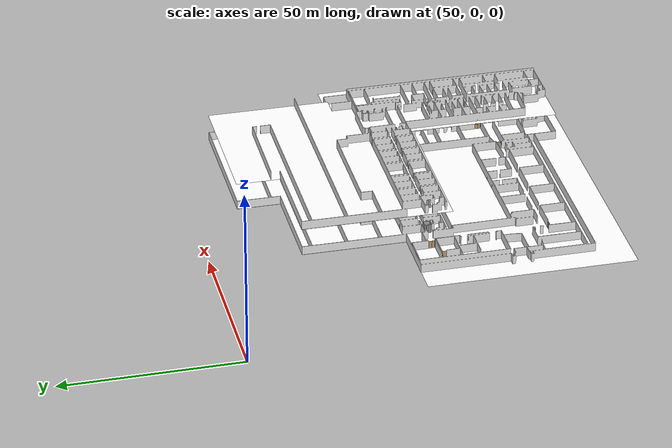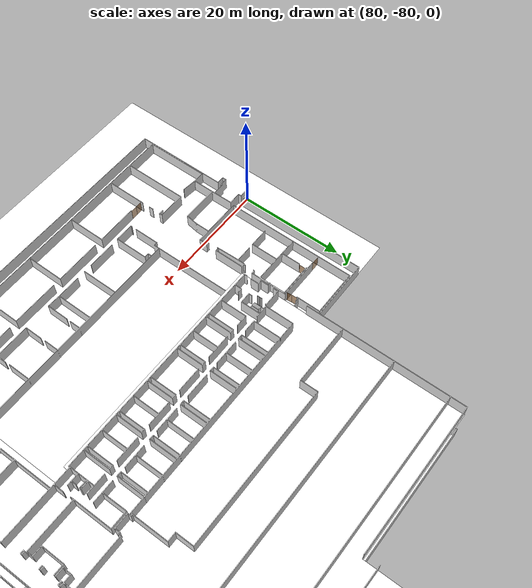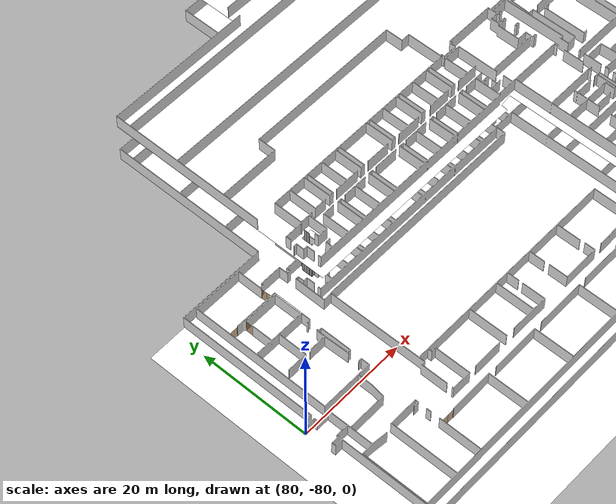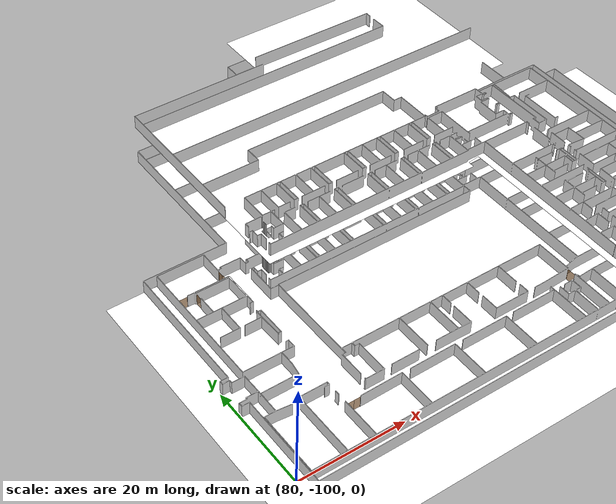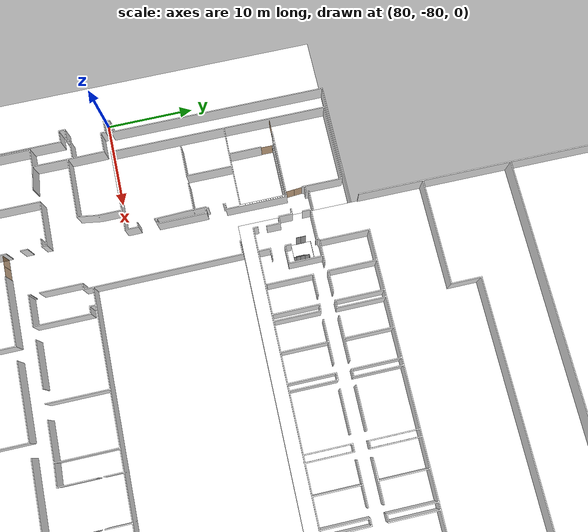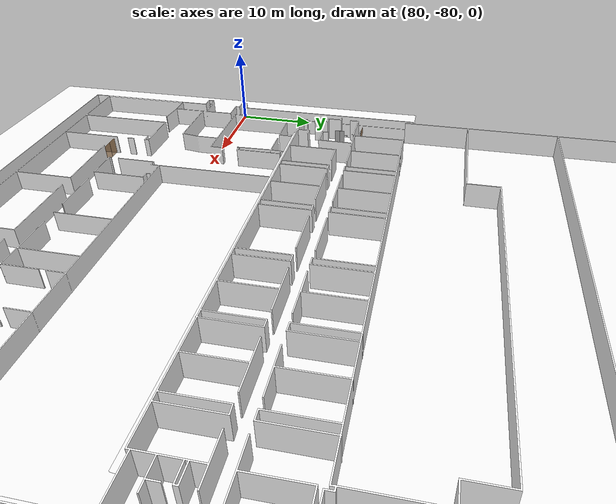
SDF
<sdf version="1.7">
 <world name="sim_world">
  <physics name="10ms" type="ode">
   <max_step_size>0.01</max_step_size>
   <real_time_factor>1.0</real_time_factor>
  </physics>
  <plugin filename="gz-sim-physics-system" name="gz::sim::systems::Physics"/>
  <plugin filename="gz-sim-user-commands-system" name="gz::sim::systems::UserCommands"/>
  <plugin filename="gz-sim-scene-broadcaster-system" name="gz::sim::systems::SceneBroadcaster"/>
  <plugin filename="libdoor.so" name="door"/>
  <plugin filename="liblift.so" name="lift"/>
  <scene><ambient>1 1 1</ambient><background>0.8 0.8 0.8</background><grid>false</grid></scene>
  <light type="directional" name="sun">
   <pose>0 0 10 0 0 0</pose>
   <diffuse>1 1 1 1</diffuse>
   <specular>0.2 0.2 0.2 1</specular>
   <attenuation>
    <range>1000</range>
    <constant>0.09</constant>
    <linear>0.001</linear>
    <quadratic>0.001</quadratic>
   </attenuation>
   <direction>-0.5 0.1 -0.9</direction>
  </light>
  <model name="door4">
   <pose>94.90196409929115 -93.84305380034401 0.0 0 0 0.0048602091617273935</pose>
   <link name="right">
    <pose>0.6457047399426173 0 1.11 0 0 0</pose>
    <visual name="right_visual">
     <geometry><box><size>1.2814094798852347 0.03 2.2</size></box></geometry>
     <material>
      <ambient>0.5 0.25 0 0.6</ambient>
      <diffuse>0.5 0.25 0 0.6</diffuse>
      <pbr><metal><metalness>0.0</metalness></metal></pbr>
     </material>
    </visual>
    <collision name="right_collision">
     <geometry><box><size>1.2814094798852347 0.03 2.2</size></box></geometry>
     <surface><contact><collide_bitmask>0x02</collide_bitmask></contact></surface>
    </collision>
    <inertial>
     <mass>50.0</mass>
     <inertia><ixx>20.17041666666667</ixx><iyy>27.008376063082288</iyy><izz>6.845459396415616</izz></inertia>
    </inertial>
   </link>
   <joint name="right_joint" type="revolute">
    <parent>world</parent>
    <child>right</child>
    <axis><xyz>0 0 1</xyz><limit><lower>0</lower><upper>1.57</upper></limit></axis>
    <pose>0.6457047399426173 0 0 0 0 0</pose>
   </joint>
   <link name="left">
    <pose>-0.6457047399426173 0 1.11 0 0 0</pose>
    <visual name="left_visual">
     <geometry><box><size>1.2814094798852347 0.03 2.2</size></box></geometry>
     <material>
      <ambient>0.5 0.25 0 0.6</ambient>
      <diffuse>0.5 0.25 0 0.6</diffuse>
      <pbr><metal><metalness>0.0</metalness></metal></pbr>
     </material>
    </visual>
    <collision name="left_collision">
     <geometry><box><size>1.2814094798852347 0.03 2.2</size></box></geometry>
     <surface><contact><collide_bitmask>0x02</collide_bitmask></contact></surface>
    </collision>
    <inertial>
     <mass>50.0</mass>
     <inertia><ixx>20.17041666666667</ixx><iyy>27.008376063082288</iyy><izz>6.845459396415616</izz></inertia>
    </inertial>
   </link>
   <joint name="left_joint" type="revolute">
    <parent>world</parent>
    <child>left</child>
    <axis><xyz>0 0 1</xyz><limit><lower>-1.57</lower><upper>0</upper></limit></axis>
    <pose>-0.6457047399426173 0 0 0 0 0</pose>
   </joint>
   <plugin name="register_component" filename="libregister_component.so">
    <component name="Door">
     <v_max_door>0.5</v_max_door>
     <a_max_door>0.3</a_max_door>
     <a_nom_door>0.15</a_nom_door>
     <dx_min_door>0.01</dx_min_door>
     <f_max_door>500.0</f_max_door>
     <ros_interface>true</ros_interface>
     <door name="door4" type="DoubleSwingDoor" left_joint_name="left_joint" right_joint_name="right_joint"/>
    </component>
   </plugin>
  </model>
  <model name="door5">
   <pose>140.76723288968157 -92.18796096315671 0.0 0 0 -1.5707712459090577</pose>
   <link name="right">
    <pose>0 0 1.11 0 0 0</pose>
    <visual name="right_visual">
     <geometry><box><size>1.6751862032291196 0.03 2.2</size></box></geometry>
     <material>
      <ambient>0.5 0.25 0 0.6</ambient>
      <diffuse>0.5 0.25 0 0.6</diffuse>
      <pbr><metal><metalness>0.0</metalness></metal></pbr>
     </material>
    </visual>
    <collision name="right_collision">
     <geometry><box><size>1.6751862032291196 0.03 2.2</size></box></geometry>
     <surface><contact><collide_bitmask>0x02</collide_bitmask></contact></surface>
    </collision>
    <inertial>
     <mass>50.0</mass>
     <inertia><ixx>20.17041666666667</ixx><iyy>31.85937006453831</iyy><izz>11.69645339787164</izz></inertia>
    </inertial>
   </link>
   <joint name="right_joint" type="revolute">
    <parent>world</parent>
    <child>right</child>
    <axis><xyz>0 0 1</xyz><limit><lower>0</lower><upper>1.57</upper></limit></axis>
    <pose>0.8425931016145598 0 0 0 0 0</pose>
   </joint>
   <plugin name="register_component" filename="libregister_component.so">
    <component name="Door">
     <v_max_door>0.5</v_max_door>
     <a_max_door>0.3</a_max_door>
     <a_nom_door>0.15</a_nom_door>
     <dx_min_door>0.01</dx_min_door>
     <f_max_door>500.0</f_max_door>
     <ros_interface>true</ros_interface>
     <door name="door5" type="SwingDoor" left_joint_name="empty_joint" right_joint_name="right_joint"/>
    </component>
   </plugin>
  </model>
  <model name="door6">
   <pose>153.17392021031537 -89.32190602585828 0.0 0 0 -1.5495878729507941</pose>
   <link name="right">
    <pose>0.46039043894221876 0 1.11 0 0 0</pose>
    <visual name="right_visual">
     <geometry><box><size>0.9107808778844375 0.03 2.2</size></box></geometry>
     <material>
      <ambient>0.5 0.25 0 0.6</ambient>
      <diffuse>0.5 0.25 0 0.6</diffuse>
      <pbr><metal><metalness>0.0</metalness></metal></pbr>
     </material>
    </visual>
    <collision name="right_collision">
     <geometry><box><size>0.9107808778844375 0.03 2.2</size></box></geometry>
     <surface><contact><collide_bitmask>0x02</collide_bitmask></contact></surface>
    </collision>
    <inertial>
     <mass>50.0</mass>
     <inertia><ixx>20.17041666666667</ixx><iyy>23.623007531333116</iyy><izz>3.4600908646664448</izz></inertia>
    </inertial>
   </link>
   <joint name="right_joint" type="revolute">
    <parent>world</parent>
    <child>right</child>
    <axis><xyz>0 0 -1</xyz><limit><lower>0</lower><upper>1.57</upper></limit></axis>
    <pose>0.46039043894221876 0 0 0 0 0</pose>
   </joint>
   <link name="left">
    <pose>-0.46039043894221876 0 1.11 0 0 0</pose>
    <visual name="left_visual">
     <geometry><box><size>0.9107808778844375 0.03 2.2</size></box></geometry>
     <material>
      <ambient>0.5 0.25 0 0.6</ambient>
      <diffuse>0.5 0.25 0 0.6</diffuse>
      <pbr><metal><metalness>0.0</metalness></metal></pbr>
     </material>
    </visual>
    <collision name="left_collision">
     <geometry><box><size>0.9107808778844375 0.03 2.2</size></box></geometry>
     <surface><contact><collide_bitmask>0x02</collide_bitmask></contact></surface>
    </collision>
    <inertial>
     <mass>50.0</mass>
     <inertia><ixx>20.17041666666667</ixx><iyy>23.623007531333116</iyy><izz>3.4600908646664448</izz></inertia>
    </inertial>
   </link>
   <joint name="left_joint" type="revolute">
    <parent>world</parent>
    <child>left</child>
    <axis><xyz>0 0 -1</xyz><limit><lower>-1.57</lower><upper>0</upper></limit></axis>
    <pose>-0.46039043894221876 0 0 0 0 0</pose>
   </joint>
   <plugin name="register_component" filename="libregister_component.so">
    <component name="Door">
     <v_max_door>0.5</v_max_door>
     <a_max_door>0.3</a_max_door>
     <a_nom_door>0.15</a_nom_door>
     <dx_min_door>0.01</dx_min_door>
     <f_max_door>500.0</f_max_door>
     <ros_interface>true</ros_interface>
     <door name="door6" type="DoubleSwingDoor" left_joint_name="left_joint" right_joint_name="right_joint"/>
    </component>
   </plugin>
  </model>
  <model name="door8">
   <pose>155.78752055182434 -63.51126599238364 0.0 0 0 -1.5707963267948966</pose>
   <link name="right">
    <pose>0.29152947839575327 0 1.11 0 0 0</pose>
    <visual name="right_visual">
     <geometry><box><size>1.1561179135830129 0.03 2.2</size></box></geometry>
     <material>
      <ambient>0.5 0.25 0 0.6</ambient>
      <diffuse>0.5 0.25 0 0.6</diffuse>
      <pbr><metal><metalness>0.0</metalness></metal></pbr>
     </material>
    </visual>
    <collision name="right_collision">
     <geometry><box><size>1.1561179135830129 0.03 2.2</size></box></geometry>
     <surface><contact><collide_bitmask>0x02</collide_bitmask></contact></surface>
    </collision>
    <inertial>
     <mass>50.0</mass>
     <inertia><ixx>20.17041666666667</ixx><iyy>25.73586929211475</iyy><izz>5.572952625448078</izz></inertia>
    </inertial>
   </link>
   <joint name="right_joint" type="revolute">
    <parent>world</parent>
    <child>right</child>
    <axis><xyz>0 0 1</xyz><limit><lower>0</lower><upper>1.57</upper></limit></axis>
    <pose>0.5830589567915064 0 0 0 0 0</pose>
   </joint>
   <link name="left">
    <pose>-0.5830589567915064 0 1.11 0 0 0</pose>
    <visual name="left_visual">
     <geometry><box><size>0.5730589567915065 0.03 2.2</size></box></geometry>
     <material>
      <ambient>0.5 0.25 0 0.6</ambient>
      <diffuse>0.5 0.25 0 0.6</diffuse>
      <pbr><metal><metalness>0.0</metalness></metal></pbr>
     </material>
    </visual>
    <collision name="left_collision">
     <geometry><box><size>0.5730589567915065 0.03 2.2</size></box></geometry>
     <surface><contact><collide_bitmask>0x02</collide_bitmask></contact></surface>
    </collision>
    <inertial>
     <mass>50.0</mass>
     <inertia><ixx>20.17041666666667</ixx><iyy>21.534985699829043</iyy><izz>1.3720690331623742</izz></inertia>
    </inertial>
   </link>
   <joint name="left_joint" type="revolute">
    <parent>world</parent>
    <child>left</child>
    <axis><xyz>0 0 1</xyz><limit><lower>-1.57</lower><upper>0</upper></limit></axis>
    <pose>-0.29152947839575327 0 0 0 0 0</pose>
   </joint>
   <plugin name="register_component" filename="libregister_component.so">
    <component name="Door">
     <v_max_door>0.5</v_max_door>
     <a_max_door>0.3</a_max_door>
     <a_nom_door>0.15</a_nom_door>
     <dx_min_door>0.01</dx_min_door>
     <f_max_door>500.0</f_max_door>
     <ros_interface>true</ros_interface>
     <door name="door8" type="DoubleSwingDoor" left_joint_name="left_joint" right_joint_name="right_joint"/>
    </component>
   </plugin>
  </model>
  <model name="door9">
   <pose>158.94998668622165 -62.179592302522835 0.0 0 0 3.1332609633332242</pose>
   <link name="right">
    <pose>0.6476497381329738 0 1.11 0 0 0</pose>
    <visual name="right_visual">
     <geometry><box><size>0.6376497381329737 0.03 2.2</size></box></geometry>
     <material>
      <ambient>0.5 0.25 0 0.6</ambient>
      <diffuse>0.5 0.25 0 0.6</diffuse>
      <pbr><metal><metalness>0.0</metalness></metal></pbr>
     </material>
    </visual>
    <collision name="right_collision">
     <geometry><box><size>0.6376497381329737 0.03 2.2</size></box></geometry>
     <surface><contact><collide_bitmask>0x02</collide_bitmask></contact></surface>
    </collision>
    <inertial>
     <mass>50.0</mass>
     <inertia><ixx>20.17041666666667</ixx><iyy>21.860821618921047</iyy><izz>1.6979049522543745</izz></inertia>
    </inertial>
   </link>
   <joint name="right_joint" type="revolute">
    <parent>world</parent>
    <child>right</child>
    <axis><xyz>0 0 -1</xyz><limit><lower>0</lower><upper>1.57</upper></limit></axis>
    <pose>0.32382486906648683 0 0 0 0 0</pose>
   </joint>
   <link name="left">
    <pose>-0.3238248690664868 0 1.11 0 0 0</pose>
    <visual name="left_visual">
     <geometry><box><size>1.2852994762659475 0.03 2.2</size></box></geometry>
     <material>
      <ambient>0.5 0.25 0 0.6</ambient>
      <diffuse>0.5 0.25 0 0.6</diffuse>
      <pbr><metal><metalness>0.0</metalness></metal></pbr>
     </material>
    </visual>
    <collision name="left_collision">
     <geometry><box><size>1.2852994762659475 0.03 2.2</size></box></geometry>
     <surface><contact><collide_bitmask>0x02</collide_bitmask></contact></surface>
    </collision>
    <inertial>
     <mass>50.0</mass>
     <inertia><ixx>20.17041666666667</ixx><iyy>27.049978098706333</iyy><izz>6.887061432039663</izz></inertia>
    </inertial>
   </link>
   <joint name="left_joint" type="revolute">
    <parent>world</parent>
    <child>left</child>
    <axis><xyz>0 0 -1</xyz><limit><lower>-1.57</lower><upper>0</upper></limit></axis>
    <pose>-0.6476497381329738 0 0 0 0 0</pose>
   </joint>
   <plugin name="register_component" filename="libregister_component.so">
    <component name="Door">
     <v_max_door>0.5</v_max_door>
     <a_max_door>0.3</a_max_door>
     <a_nom_door>0.15</a_nom_door>
     <dx_min_door>0.01</dx_min_door>
     <f_max_door>500.0</f_max_door>
     <ros_interface>true</ros_interface>
     <door name="door9" type="DoubleSwingDoor" left_joint_name="left_joint" right_joint_name="right_joint"/>
    </component>
   </plugin>
  </model>
  <model name="door3">
   <pose>93.21914479050871 -60.31699472098123 0.0 0 0 1.6431231623207885</pose>
   <link name="right">
    <pose>0.4948121740930079 0 1.11 0 0 0</pose>
    <visual name="right_visual">
     <geometry><box><size>0.9796243481860157 0.03 2.2</size></box></geometry>
     <material>
      <ambient>0.5 0.25 0 0.6</ambient>
      <diffuse>0.5 0.25 0 0.6</diffuse>
      <pbr><metal><metalness>0.0</metalness></metal></pbr>
     </material>
    </visual>
    <collision name="right_collision">
     <geometry><box><size>0.9796243481860157 0.03 2.2</size></box></geometry>
     <surface><contact><collide_bitmask>0x02</collide_bitmask></contact></surface>
    </collision>
    <inertial>
     <mass>50.0</mass>
     <inertia><ixx>20.17041666666667</ixx><iyy>24.165266098161986</iyy><izz>4.002349431495318</izz></inertia>
    </inertial>
   </link>
   <joint name="right_joint" type="revolute">
    <parent>world</parent>
    <child>right</child>
    <axis><xyz>0 0 1</xyz><limit><lower>0</lower><upper>1.57</upper></limit></axis>
    <pose>0.4948121740930079 0 0 0 0 0</pose>
   </joint>
   <link name="left">
    <pose>-0.4948121740930079 0 1.11 0 0 0</pose>
    <visual name="left_visual">
     <geometry><box><size>0.9796243481860157 0.03 2.2</size></box></geometry>
     <material>
      <ambient>0.5 0.25 0 0.6</ambient>
      <diffuse>0.5 0.25 0 0.6</diffuse>
      <pbr><metal><metalness>0.0</metalness></metal></pbr>
     </material>
    </visual>
    <collision name="left_collision">
     <geometry><box><size>0.9796243481860157 0.03 2.2</size></box></geometry>
     <surface><contact><collide_bitmask>0x02</collide_bitmask></contact></surface>
    </collision>
    <inertial>
     <mass>50.0</mass>
     <inertia><ixx>20.17041666666667</ixx><iyy>24.165266098161986</iyy><izz>4.002349431495318</izz></inertia>
    </inertial>
   </link>
   <joint name="left_joint" type="revolute">
    <parent>world</parent>
    <child>left</child>
    <axis><xyz>0 0 1</xyz><limit><lower>-1.57</lower><upper>0</upper></limit></axis>
    <pose>-0.4948121740930079 0 0 0 0 0</pose>
   </joint>
   <plugin name="register_component" filename="libregister_component.so">
    <component name="Door">
     <v_max_door>0.5</v_max_door>
     <a_max_door>0.3</a_max_door>
     <a_nom_door>0.15</a_nom_door>
     <dx_min_door>0.01</dx_min_door>
     <f_max_door>500.0</f_max_door>
     <ros_interface>true</ros_interface>
     <door name="door3" type="DoubleSwingDoor" left_joint_name="left_joint" right_joint_name="right_joint"/>
    </component>
   </plugin>
  </model>
  <model name="door2">
   <pose>85.05781983710695 -61.277890252200976 0.0 0 0 -0.0020322625508059243</pose>
   <link name="right">
    <pose>0 0 1.11 0 0 0</pose>
    <visual name="right_visual">
     <geometry><box><size>1.674597957990252 0.03 2.2</size></box></geometry>
     <material>
      <ambient>0.5 0.25 0 0.6</ambient>
      <diffuse>0.5 0.25 0 0.6</diffuse>
      <pbr><metal><metalness>0.0</metalness></metal></pbr>
     </material>
    </visual>
    <collision name="right_collision">
     <geometry><box><size>1.674597957990252 0.03 2.2</size></box></geometry>
     <surface><contact><collide_bitmask>0x02</collide_bitmask></contact></surface>
    </collision>
    <inertial>
     <mass>50.0</mass>
     <inertia><ixx>20.17041666666667</ixx><iyy>31.851159670438015</iyy><izz>11.688243003771342</izz></inertia>
    </inertial>
   </link>
   <joint name="right_joint" type="revolute">
    <parent>world</parent>
    <child>right</child>
    <axis><xyz>0 0 -1</xyz><limit><lower>0</lower><upper>1.57</upper></limit></axis>
    <pose>0.842298978995126 0 0 0 0 0</pose>
   </joint>
   <plugin name="register_component" filename="libregister_component.so">
    <component name="Door">
     <v_max_door>0.5</v_max_door>
     <a_max_door>0.3</a_max_door>
     <a_nom_door>0.15</a_nom_door>
     <dx_min_door>0.01</dx_min_door>
     <f_max_door>500.0</f_max_door>
     <ros_interface>true</ros_interface>
     <door name="door2" type="SwingDoor" left_joint_name="empty_joint" right_joint_name="right_joint"/>
    </component>
   </plugin>
  </model>
  <model name="door1">
   <pose>87.41093504989493 -62.256960147423655 0.0 0 0 1.5614275875028591</pose>
   <link name="right">
    <pose>0 0 1.11 0 0 0</pose>
    <visual name="right_visual">
     <geometry><box><size>1.4020832562722159 0.03 2.2</size></box></geometry>
     <material>
      <ambient>0.5 0.25 0 0.6</ambient>
      <diffuse>0.5 0.25 0 0.6</diffuse>
      <pbr><metal><metalness>0.0</metalness></metal></pbr>
     </material>
    </visual>
    <collision name="right_collision">
     <geometry><box><size>1.4020832562722159 0.03 2.2</size></box></geometry>
     <surface><contact><collide_bitmask>0x02</collide_bitmask></contact></surface>
    </collision>
    <inertial>
     <mass>50.0</mass>
     <inertia><ixx>20.17041666666667</ixx><iyy>28.357656072995425</iyy><izz>8.19473940632875</izz></inertia>
    </inertial>
   </link>
   <joint name="right_joint" type="revolute">
    <parent>world</parent>
    <child>right</child>
    <axis><xyz>0 0 -1</xyz><limit><lower>0</lower><upper>1.57</upper></limit></axis>
    <pose>0.7060416281361079 0 0 0 0 0</pose>
   </joint>
   <plugin name="register_component" filename="libregister_component.so">
    <component name="Door">
     <v_max_door>0.5</v_max_door>
     <a_max_door>0.3</a_max_door>
     <a_nom_door>0.15</a_nom_door>
     <dx_min_door>0.01</dx_min_door>
     <f_max_door>500.0</f_max_door>
     <ros_interface>true</ros_interface>
     <door name="door1" type="SwingDoor" left_joint_name="empty_joint" right_joint_name="right_joint"/>
    </component>
   </plugin>
  </model>
  <include><name>psychology_L1</name><uri>model://psychology_L1</uri></include>
  <include><name>psychology_L3</name><uri>model://psychology_L3</uri><pose>0 0 8.0 0 0 0</pose></include>
  <model name="ShaftDoor_lift_L1_doors">
   <pose>101.02230015596136 -61.28564605637432 0.0 0 0 -1.57</pose>
   <link name="right_door">
    <pose>0.25 0 1.25 0 0 0</pose>
    <visual name="right_door_visual">
     <geometry><box><size>0.5 0.03 2.5</size></box></geometry>
     <material>
      <ambient>0.5 0.5 0.5 1</ambient>
      <diffuse>0.7 0.7 0.7 1</diffuse>
      <specular>0.6 0.6 0.6 1</specular>
      <emissive>0.1 0.1 0.1 1</emissive>
     </material>
    </visual>
    <collision name="right_door_collision">
     <geometry><box><size>0.5 0.03 2.5</size></box></geometry>
     <surface><contact><collide_bitmask>0x02</collide_bitmask></contact></surface>
    </collision>
   </link>
   <link name="left_door">
    <pose>-0.25 0 1.25 0 0 0</pose>
    <visual name="left_door_visual">
     <geometry><box><size>0.5 0.03 2.5</size></box></geometry>
     <material>
      <ambient>0.5 0.5 0.5 1</ambient>
      <diffuse>0.7 0.7 0.7 1</diffuse>
      <specular>0.6 0.6 0.6 1</specular>
      <emissive>0.1 0.1 0.1 1</emissive>
     </material>
    </visual>
    <collision name="left_door_collision">
     <geometry><box><size>0.5 0.03 2.5</size></box></geometry>
     <surface><contact><collide_bitmask>0x02</collide_bitmask></contact></surface>
    </collision>
   </link>
   <joint name="right_joint" type="prismatic">
    <parent>world</parent>
    <child>right_door</child>
    <axis><xyz>1 0 0</xyz><limit><lower>0</lower><upper>0.5</upper></limit></axis>
   </joint>
   <joint name="left_joint" type="prismatic">
    <parent>world</parent>
    <child>left_door</child>
    <axis><xyz>1 0 0</xyz><limit><lower>-0.5</lower><upper>0</upper></limit></axis>
   </joint>
   <link name="ramp">
    <pose>0 0 -0.025 0 0 0</pose>
    <visual name="ramp_visual">
     <geometry><box><size>1.0 0.1 0.05</size></box></geometry>
     <material>
      <ambient>0.5 0.5 0.5 1</ambient>
      <diffuse>0.7 0.7 0.7 1</diffuse>
      <specular>0.6 0.6 0.6 1</specular>
      <emissive>0.1 0.1 0.1 1</emissive>
     </material>
    </visual>
    <collision name="ramp_collision">
     <geometry><box><size>1.0 0.1 0.05</size></box></geometry>
     <surface><contact><collide_bitmask>0x02</collide_bitmask></contact></surface>
    </collision>
   </link>
   <joint name="ramp_joint" type="fixed"><parent>world</parent><child>ramp</child></joint>
   <plugin name="register_component" filename="libregister_component.so">
    <component name="Door">
     <v_max_door>0.3</v_max_door>
     <a_max_door>0.2</a_max_door>
     <a_nom_door>0.1</a_nom_door>
     <dx_min_door>0.0001</dx_min_door>
     <f_max_door>35.0</f_max_door>
     <door left_joint_name="left_joint" name="ShaftDoor_lift_L1_doors" right_joint_name="right_joint" type="DoubleSlidingDoor"/>
    </component>
   </plugin>
  </model>
  <model name="ShaftDoor_lift_L3_doors">
   <pose>101.02230015596136 -61.28564605637432 8.0 0 0 -1.57</pose>
   <link name="right_door">
    <pose>0.25 0 1.25 0 0 0</pose>
    <visual name="right_door_visual">
     <geometry><box><size>0.5 0.03 2.5</size></box></geometry>
     <material>
      <ambient>0.5 0.5 0.5 1</ambient>
      <diffuse>0.7 0.7 0.7 1</diffuse>
      <specular>0.6 0.6 0.6 1</specular>
      <emissive>0.1 0.1 0.1 1</emissive>
     </material>
    </visual>
    <collision name="right_door_collision">
     <geometry><box><size>0.5 0.03 2.5</size></box></geometry>
     <surface><contact><collide_bitmask>0x02</collide_bitmask></contact></surface>
    </collision>
   </link>
   <link name="left_door">
    <pose>-0.25 0 1.25 0 0 0</pose>
    <visual name="left_door_visual">
     <geometry><box><size>0.5 0.03 2.5</size></box></geometry>
     <material>
      <ambient>0.5 0.5 0.5 1</ambient>
      <diffuse>0.7 0.7 0.7 1</diffuse>
      <specular>0.6 0.6 0.6 1</specular>
      <emissive>0.1 0.1 0.1 1</emissive>
     </material>
    </visual>
    <collision name="left_door_collision">
     <geometry><box><size>0.5 0.03 2.5</size></box></geometry>
     <surface><contact><collide_bitmask>0x02</collide_bitmask></contact></surface>
    </collision>
   </link>
   <joint name="right_joint" type="prismatic">
    <parent>world</parent>
    <child>right_door</child>
    <axis><xyz>1 0 0</xyz><limit><lower>0</lower><upper>0.5</upper></limit></axis>
   </joint>
   <joint name="left_joint" type="prismatic">
    <parent>world</parent>
    <child>left_door</child>
    <axis><xyz>1 0 0</xyz><limit><lower>-0.5</lower><upper>0</upper></limit></axis>
   </joint>
   <link name="ramp">
    <pose>0 0 -0.025 0 0 0</pose>
    <visual name="ramp_visual">
     <geometry><box><size>1.0 0.1 0.05</size></box></geometry>
     <material>
      <ambient>0.5 0.5 0.5 1</ambient>
      <diffuse>0.7 0.7 0.7 1</diffuse>
      <specular>0.6 0.6 0.6 1</specular>
      <emissive>0.1 0.1 0.1 1</emissive>
     </material>
    </visual>
    <collision name="ramp_collision">
     <geometry><box><size>1.0 0.1 0.05</size></box></geometry>
     <surface><contact><collide_bitmask>0x02</collide_bitmask></contact></surface>
    </collision>
   </link>
   <joint name="ramp_joint" type="fixed"><parent>world</parent><child>ramp</child></joint>
   <plugin name="register_component" filename="libregister_component.so">
    <component name="Door">
     <v_max_door>0.3</v_max_door>
     <a_max_door>0.2</a_max_door>
     <a_nom_door>0.1</a_nom_door>
     <dx_min_door>0.0001</dx_min_door>
     <f_max_door>35.0</f_max_door>
     <door left_joint_name="left_joint" name="ShaftDoor_lift_L3_doors" right_joint_name="right_joint" type="DoubleSlidingDoor"/>
    </component>
   </plugin>
  </model>
  <model name="lift">
   <link name="platform">
    <inertial>
     <mass>1200</mass>
     <inertia><ixx>400.25000000000006</ixx><iyy>400.25000000000006</iyy><izz>800.0</izz></inertia>
    </inertial>
    <visual name="floor_visual">
     <pose>0 0 -0.025 0 0 0</pose>
     <geometry><box><size>2.0 2.0 0.05</size></box></geometry>
     <material>
      <ambient>0.5 0.5 0.5 1</ambient>
      <diffuse>0.7 0.7 0.7 1</diffuse>
      <specular>0.6 0.6 0.6 1</specular>
      <emissive>0.1 0.1 0.1 1</emissive>
     </material>
    </visual>
    <collision name="floor_collision">
     <pose>0 0 -0.025 0 0 0</pose>
     <geometry><box><size>2.0 2.0 0.05</size></box></geometry>
     <surface><contact><collide_bitmask>0x01</collide_bitmask></contact></surface>
    </collision>
    <visual name="frontwall1_visual">
     <pose>0.0 0.975 1.25 0 0 0</pose>
     <geometry><box><size>2.0 0.05 2.5</size></box></geometry>
     <material>
      <ambient>0.5 0.5 0.5 1</ambient>
      <diffuse>0.7 0.7 0.7 1</diffuse>
      <specular>0.6 0.6 0.6 1</specular>
      <emissive>0.1 0.1 0.1 1</emissive>
     </material>
    </visual>
    <collision name="frontwall1_collision">
     <pose>0.0 0.975 1.25 0 0 0</pose>
     <geometry><box><size>2.0 0.05 2.5</size></box></geometry>
     <surface><contact><collide_bitmask>0x01</collide_bitmask></contact></surface>
    </collision>
    <visual name="backwall1_visual">
     <pose>0.0 -0.975 1.25 0 0 0</pose>
     <geometry><box><size>2.0 0.05 2.5</size></box></geometry>
     <material>
      <ambient>0.5 0.5 0.5 1</ambient>
      <diffuse>0.7 0.7 0.7 1</diffuse>
      <specular>0.6 0.6 0.6 1</specular>
      <emissive>0.1 0.1 0.1 1</emissive>
     </material>
    </visual>
    <collision name="backwall1_collision">
     <pose>0.0 -0.975 1.25 0 0 0</pose>
     <geometry><box><size>2.0 0.05 2.5</size></box></geometry>
     <surface><contact><collide_bitmask>0x01</collide_bitmask></contact></surface>
    </collision>
    <visual name="leftwall1_visual">
     <pose>-0.975 -0.725 1.25 0 0 1.5707963267948966</pose>
     <geometry><box><size>0.44999999999999996 0.05 2.5</size></box></geometry>
     <material>
      <ambient>0.5 0.5 0.5 1</ambient>
      <diffuse>0.7 0.7 0.7 1</diffuse>
      <specular>0.6 0.6 0.6 1</specular>
      <emissive>0.1 0.1 0.1 1</emissive>
     </material>
    </visual>
    <collision name="leftwall1_collision">
     <pose>-0.975 -0.725 1.25 0 0 1.5707963267948966</pose>
     <geometry><box><size>0.44999999999999996 0.05 2.5</size></box></geometry>
     <surface><contact><collide_bitmask>0x01</collide_bitmask></contact></surface>
    </collision>
    <visual name="leftwall2_visual">
     <pose>-0.975 0.725 1.25 0 0 1.5707963267948966</pose>
     <geometry><box><size>0.44999999999999996 0.05 2.5</size></box></geometry>
     <material>
      <ambient>0.5 0.5 0.5 1</ambient>
      <diffuse>0.7 0.7 0.7 1</diffuse>
      <specular>0.6 0.6 0.6 1</specular>
      <emissive>0.1 0.1 0.1 1</emissive>
     </material>
    </visual>
    <collision name="leftwall2_collision">
     <pose>-0.975 0.725 1.25 0 0 1.5707963267948966</pose>
     <geometry><box><size>0.44999999999999996 0.05 2.5</size></box></geometry>
     <surface><contact><collide_bitmask>0x01</collide_bitmask></contact></surface>
    </collision>
    <visual name="rightwall1_visual">
     <pose>0.975 0.0 1.25 0 0 1.5707963267948966</pose>
     <geometry><box><size>1.9 0.05 2.5</size></box></geometry>
     <material>
      <ambient>0.5 0.5 0.5 1</ambient>
      <diffuse>0.7 0.7 0.7 1</diffuse>
      <specular>0.6 0.6 0.6 1</specular>
      <emissive>0.1 0.1 0.1 1</emissive>
     </material>
    </visual>
    <collision name="rightwall1_collision">
     <pose>0.975 0.0 1.25 0 0 1.5707963267948966</pose>
     <geometry><box><size>1.9 0.05 2.5</size></box></geometry>
     <surface><contact><collide_bitmask>0x01</collide_bitmask></contact></surface>
    </collision>
   </link>
   <joint name="cabin_joint" type="prismatic">
    <parent>world</parent>
    <child>platform</child>
    <axis><xyz>0 0 1</xyz></axis>
   </joint>
   <model name="CabinDoor_lift_doors">
    <pose>-0.975 0.0 0 0 0 -1.57</pose>
    <link name="right_door">
     <pose>0.25 0 1.25 0 0 0</pose>
     <visual name="right_door_visual">
      <geometry><box><size>0.5 0.03 2.5</size></box></geometry>
      <material>
       <ambient>0.5 0.5 0.5 1</ambient>
       <diffuse>0.7 0.7 0.7 1</diffuse>
       <specular>0.6 0.6 0.6 1</specular>
       <emissive>0.1 0.1 0.1 1</emissive>
      </material>
     </visual>
     <collision name="right_door_collision">
      <geometry><box><size>0.5 0.03 2.5</size></box></geometry>
      <surface><contact><collide_bitmask>0x02</collide_bitmask></contact></surface>
     </collision>
    </link>
    <link name="left_door">
     <pose>-0.25 0 1.25 0 0 0</pose>
     <visual name="left_door_visual">
      <geometry><box><size>0.5 0.03 2.5</size></box></geometry>
      <material>
       <ambient>0.5 0.5 0.5 1</ambient>
       <diffuse>0.7 0.7 0.7 1</diffuse>
       <specular>0.6 0.6 0.6 1</specular>
       <emissive>0.1 0.1 0.1 1</emissive>
      </material>
     </visual>
     <collision name="left_door_collision">
      <geometry><box><size>0.5 0.03 2.5</size></box></geometry>
      <surface><contact><collide_bitmask>0x02</collide_bitmask></contact></surface>
     </collision>
    </link>
    <plugin name="register_component" filename="libregister_component.so">
     <component name="Door">
      <v_max_door>0.3</v_max_door>
      <a_max_door>0.2</a_max_door>
      <a_nom_door>0.1</a_nom_door>
      <dx_min_door>0.0001</dx_min_door>
      <f_max_door>35.0</f_max_door>
      <door left_joint_name="CabinDoor_lift_doors_left_joint" name="CabinDoor_lift_doors" right_joint_name="CabinDoor_lift_doors_right_joint" type="DoubleSlidingDoor"/>
     </component>
    </plugin>
   </model>
   <joint name="CabinDoor_lift_doors_right_joint" type="prismatic">
    <parent>platform</parent>
    <child>CabinDoor_lift_doors::right_door</child>
    <axis><xyz>1 0 0</xyz><limit><lower>0</lower><upper>0.5</upper></limit></axis>
   </joint>
   <joint name="CabinDoor_lift_doors_left_joint" type="prismatic">
    <parent>platform</parent>
    <child>CabinDoor_lift_doors::left_door</child>
    <axis><xyz>1 0 0</xyz><limit><lower>-0.5</lower><upper>0</upper></limit></axis>
   </joint>
   <plugin name="register_component" filename="libregister_component.so">
    <component name="Lift">
     <lift_name>lift</lift_name>
     <floor name="L1" elevation="0.0">
      <door_pair cabin_door="CabinDoor_lift_doors" shaft_door="ShaftDoor_lift_L1_doors"/>
     </floor>
     <floor name="L3" elevation="8.0">
      <door_pair cabin_door="CabinDoor_lift_doors" shaft_door="ShaftDoor_lift_L3_doors"/>
     </floor>
     <initial_floor>L1</initial_floor>
     <v_max_cabin>2.0</v_max_cabin>
     <a_max_cabin>1.2</a_max_cabin>
     <a_nom_cabin>1.0</a_nom_cabin>
     <dx_min_cabin>0.001</dx_min_cabin>
     <f_max_cabin>25323.0</f_max_cabin>
     <cabin_joint_name>cabin_joint</cabin_joint_name>
    </component>
   </plugin>
   <pose>102.07230015596136 -61.28564605637432 0 0 0 0.0</pose>
  </model>
  <plugin name="register_component" filename="libregister_component.so">
   <component name="Chargers">
    <rmf_charger name="cleanRobot2_charger" x="95.67805170817884" y="-98.83853134232466" z="0.0"/>
    <rmf_charger name="tinyRobot1_charger" x="148.80869157258962" y="-94.76878405051625" z="0.0"/>
    <rmf_charger name="tinyRobot2_charger" x="91.16501899855024" y="-57.09708914314212" z="0.0"/>
    <rmf_charger name="deliveryRobot1_charger" x="90.31183827351992" y="-95.7853227217589" z="0.0"/>
    <rmf_charger name="cleanRobot1_charger" x="90.44159477930823" y="-90.36407900353763" z="0.0"/>
    <rmf_charger name="deliveryRobot2_charger" x="148.5429052239843" y="-71.99599999740929" z="8.0"/>
   </component>
  </plugin>
 </world>
</sdf>

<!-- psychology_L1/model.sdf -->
<sdf version="1.7">
  <model name="psychology_L1">
    <static>true</static>
    <link name="floor_1">
      <visual name="visual">
        <geometry>
          <mesh>
            <uri>model://psychology_L1/meshes/floor_1.obj</uri>
          </mesh>
        </geometry>
        <material>
          <diffuse>1.0 1.0 1.0</diffuse>
          <specular>0.1 0.1 0.1</specular>
          <pbr>
            <metal>
              <metalness>0.0</metalness>
              <albedo_map>model://psychology_L1/meshes/blue_linoleum.png</albedo_map>
            </metal>
          </pbr>
          <script>
            <uri>model://psychology_L1/meshes/</uri>
            <name>floor_1_Diffuse</name>
          </script>
        </material>
      </visual>
      <collision name="collision">
        <geometry>
          <mesh>
            <uri>model://psychology_L1/meshes/floor_1.obj</uri>
          </mesh>
        </geometry>
        <surface>
          <contact>
            <collide_bitmask>0x01</collide_bitmask>
          </contact>
        </surface>
      </collision>
    </link>
    <link name="wall_1">
      <visual name="wall_1">
        <geometry>
          <mesh>
            <uri>model://psychology_L1/meshes/wall_1.obj</uri>
          </mesh>
        </geometry>
        <transparency>0.0</transparency>
        <material>
          <diffuse>1.0 1.0 1.0</diffuse>
          <specular>0.1 0.1 0.1</specular>
          <pbr>
            <metal>
              <metalness>0.0</metalness>
              <albedo_map>model://psychology_L1/meshes/default.png</albedo_map>
            </metal>
          </pbr>
          <script>
            <uri>model://psychology_L1/meshes/</uri>
            <name>wall_1_Diffuse</name>
          </script>
        </material>
      </visual>
      <collision name="collision">
        <geometry>
          <mesh>
            <uri>model://psychology_L1/meshes/wall_1.obj</uri>
          </mesh>
        </geometry>
        <surface>
          <contact>
            <collide_bitmask>0x01</collide_bitmask>
          </contact>
        </surface>
      </collision>
      <pose>80.25845699649612 -109.53628030605192 0 0 0 0</pose>
    </link>
  </model>
</sdf>

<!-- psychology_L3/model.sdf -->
<sdf version="1.7">
  <model name="psychology_L3">
    <static>true</static>
    <link name="floor_1">
      <visual name="visual">
        <geometry>
          <mesh>
            <uri>model://psychology_L3/meshes/floor_1.obj</uri>
          </mesh>
        </geometry>
        <material>
          <diffuse>1.0 1.0 1.0</diffuse>
          <specular>0.1 0.1 0.1</specular>
          <pbr>
            <metal>
              <metalness>0.0</metalness>
              <albedo_map>model://psychology_L3/meshes/blue_linoleum.png</albedo_map>
            </metal>
          </pbr>
          <script>
            <uri>model://psychology_L3/meshes/</uri>
            <name>floor_1_Diffuse</name>
          </script>
        </material>
      </visual>
      <collision name="collision">
        <geometry>
          <mesh>
            <uri>model://psychology_L3/meshes/floor_1.obj</uri>
          </mesh>
        </geometry>
        <surface>
          <contact>
            <collide_bitmask>0x01</collide_bitmask>
          </contact>
        </surface>
      </collision>
    </link>
    <link name="wall_1">
      <visual name="wall_1">
        <geometry>
          <mesh>
            <uri>model://psychology_L3/meshes/wall_1.obj</uri>
          </mesh>
        </geometry>
        <transparency>0.0</transparency>
        <material>
          <diffuse>1.0 1.0 1.0</diffuse>
          <specular>0.1 0.1 0.1</specular>
          <pbr>
            <metal>
              <metalness>0.0</metalness>
              <albedo_map>model://psychology_L3/meshes/default.png</albedo_map>
            </metal>
          </pbr>
          <script>
            <uri>model://psychology_L3/meshes/</uri>
            <name>wall_1_Diffuse</name>
          </script>
        </material>
      </visual>
      <collision name="collision">
        <geometry>
          <mesh>
            <uri>model://psychology_L3/meshes/wall_1.obj</uri>
          </mesh>
        </geometry>
        <surface>
          <contact>
            <collide_bitmask>0x01</collide_bitmask>
          </contact>
        </surface>
      </collision>
      <pose>97.78663865332479 -109.40574553317201 0 0 0 0</pose>
    </link>
  </model>
</sdf>
